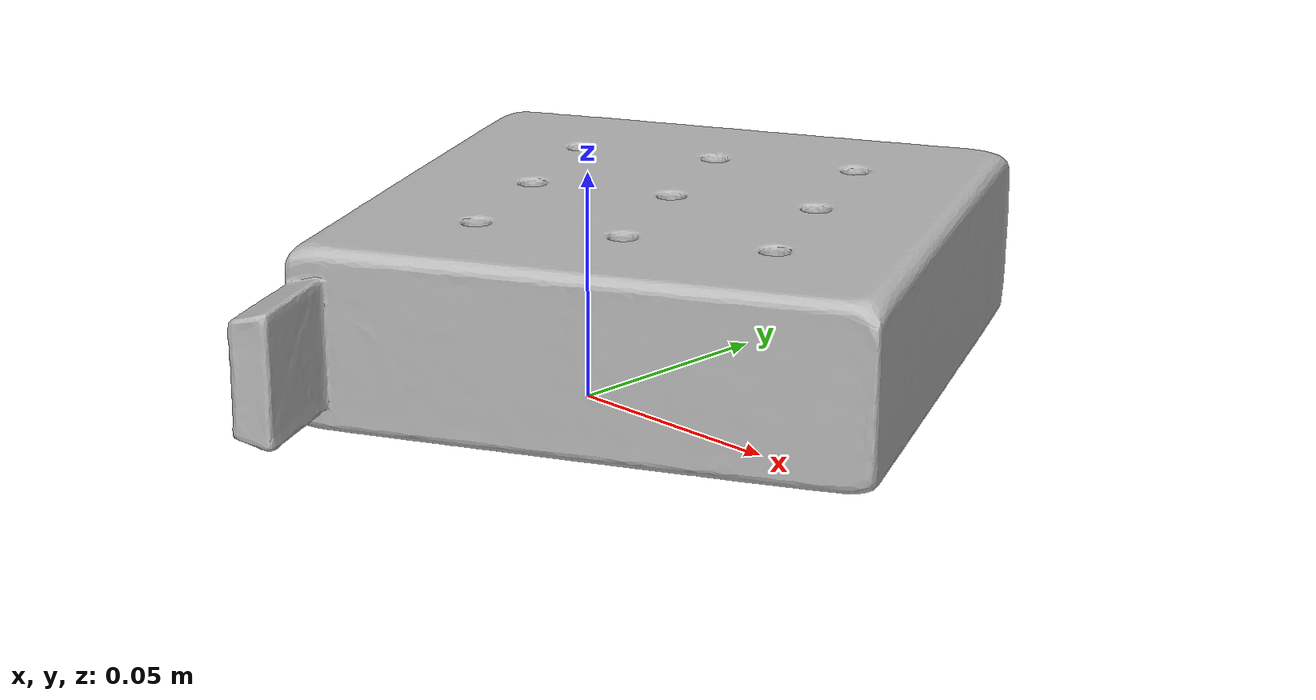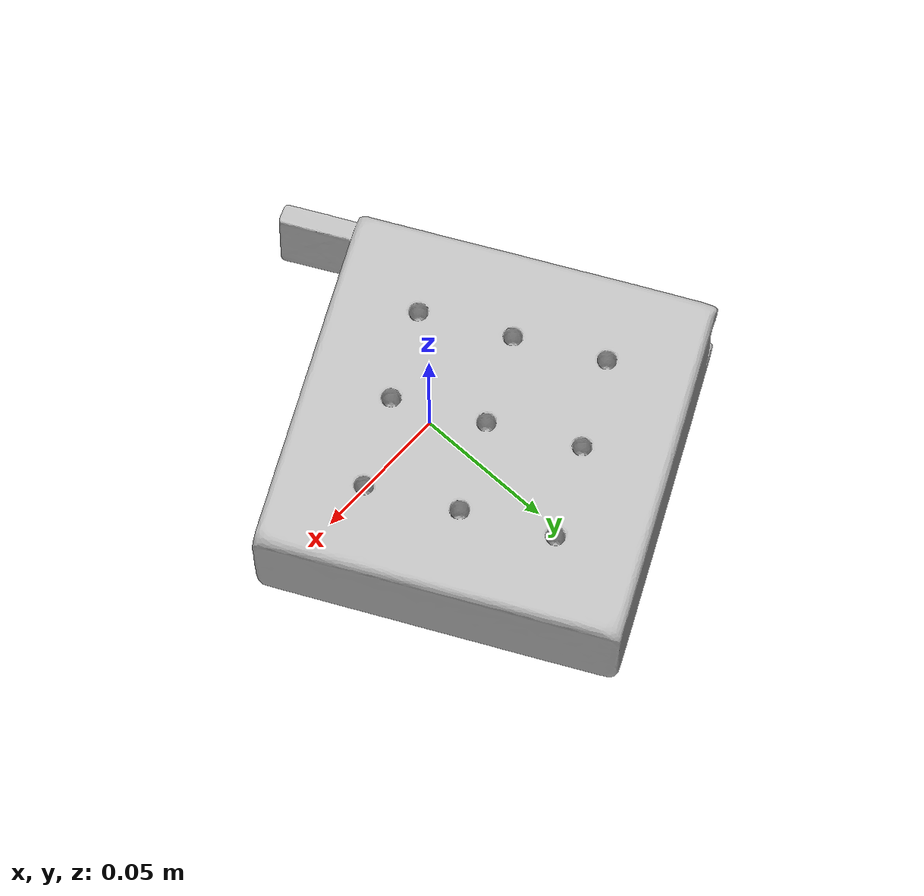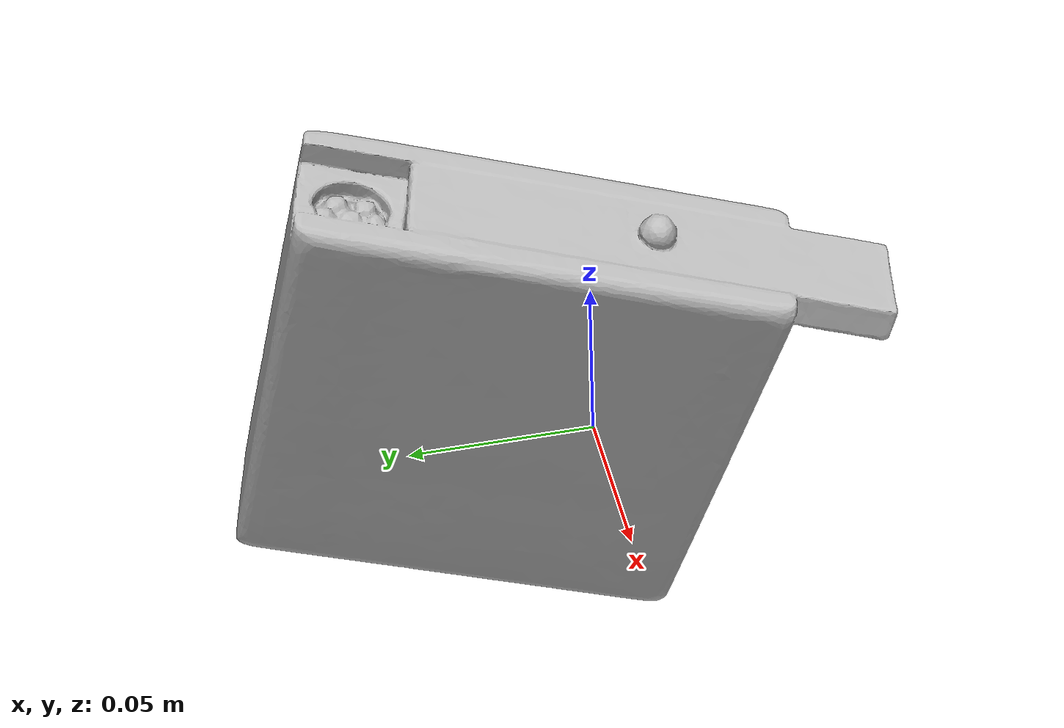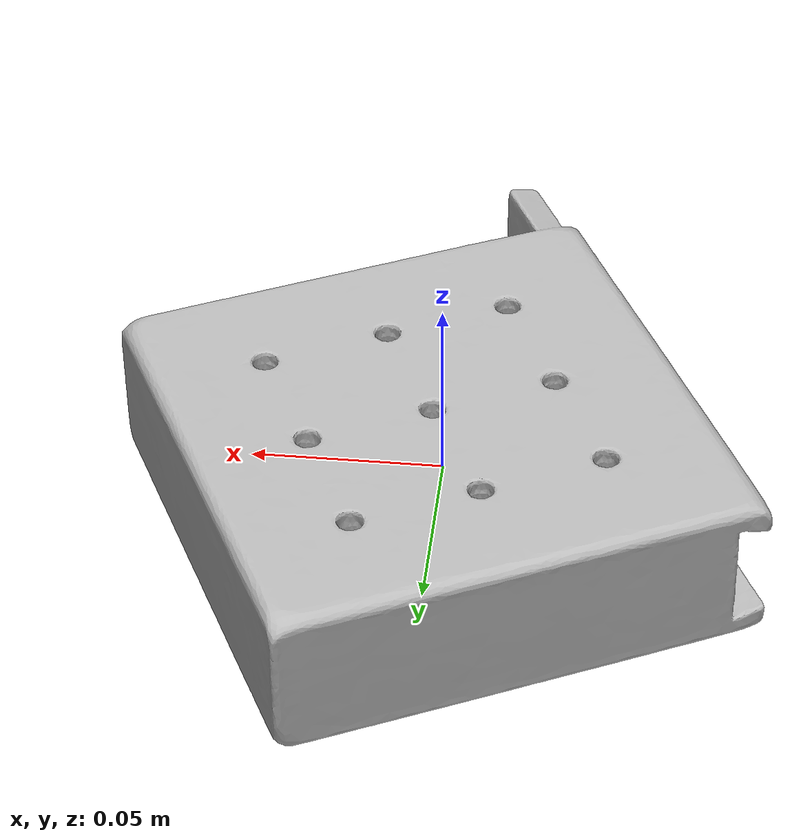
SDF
<?xml version='1.0'?>
<sdf version="1.4">
  <model name="nine_hole_peg_test">
    <static>false</static>
    <link name="link">
      <inertial>
        <pose>-0.000188539225942058 0.024373721273276625 0.019952866039031774 -0.5731920548330046 -1.5682548118819548 -1.2142461506381406</pose>
        <mass>0.0006265859969762233</mass>
        <inertia>
          <ixx>1.6556355079461083e-06</ixx>
          <ixy>7.547979933876385e-24</ixy>
          <ixz>1.7608693784143568e-24</ixz>
          <iyy>9.576057723576261e-07</iyy>
          <iyz>-1.239945404749943e-23</iyz>
          <izz>8.652779252863081e-07</izz>
        </inertia>
      </inertial>
      <collision name="collision">
        <geometry>
          <mesh>
            <!-- Use a downsampled mesh for collisions -->
            <uri>model://071_nine_hole_peg_test/google_16k/071_nine_hole_peg_test.obj</uri>
            </mesh>
        </geometry>
        <surface>
          <friction>
            <ode>
              <mu>0.9</mu>
              <mu2>0.9</mu2>
            </ode>
          </friction>
          <contact>
            <ode>
              <kp>1000000000000.0</kp>
              <kd>1</kd>
              <min_depth>0.0001</min_depth>
              <max_vel>0.01</max_vel>
            </ode>
          </contact>
          <bounce>
            <restitution_coefficient>0.1</restitution_coefficient>
            <threshold>1000.0</threshold>
          </bounce>
        </surface>
      </collision>
      <visual name="visual">
        <geometry>
          <mesh>
            <uri>model://071_nine_hole_peg_test/google_16k/071_nine_hole_peg_test.dae</uri>
            </mesh>
        </geometry>
      </visual>
    </link>
  </model>
</sdf>
